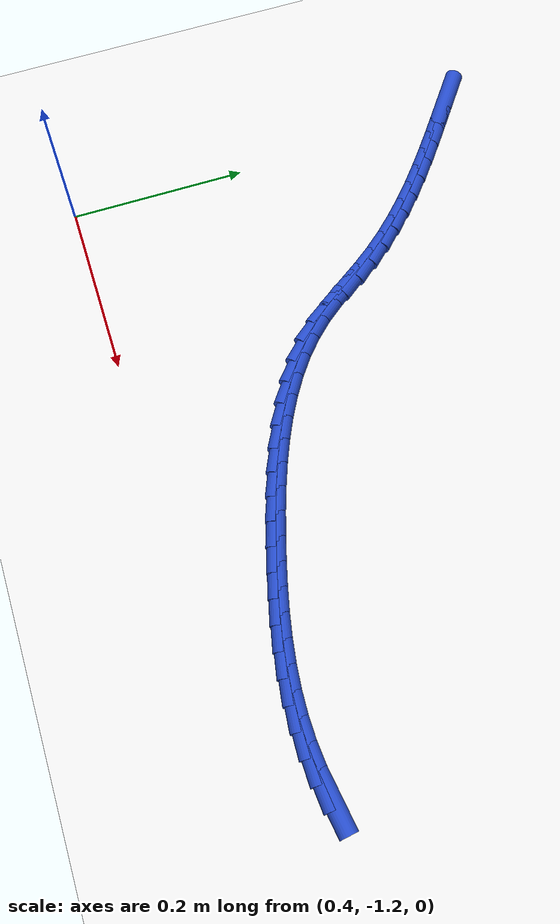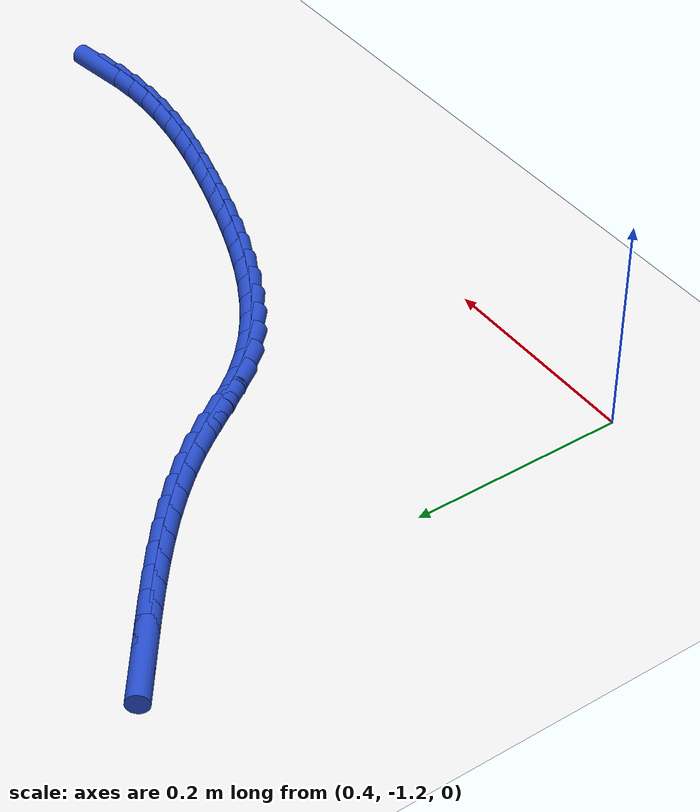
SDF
<sdf version="1.6">
 <world name="default">
  <model name="ground_plane">
   <static>1</static>
   <link name="link">
    <collision name="collision">
     <geometry><plane><normal>0 0 1</normal><size>100 100</size></plane></geometry>
     <surface><friction><ode><mu>100</mu><mu2>50</mu2></ode></friction></surface>
    </collision>
    <visual name="visual">
     <cast_shadows>0</cast_shadows>
     <geometry><plane><normal>0 0 1</normal><size>100 100</size></plane></geometry>
     <material>
      <script><uri>file://media/materials/scripts/gazebo.material</uri><name>Gazebo/WhiteGlow</name></script>
     </material>
    </visual>
   </link>
  </model>
  <model name="line">
   <link name="link_203">
    <pose>1.0924415782746888 -1.1220626288042004 0.01 0 1.57 0.1507272861004259</pose>
    <collision name="collision">
     <geometry><cylinder><radius>0.01</radius><length>0.08</length></cylinder></geometry>
    </collision>
    <visual name="visual">
     <material>
      <script><name>Gazebo/Blue</name><uri>file://media/materials/scripts/gazebo.material</uri></script>
     </material>
     <geometry><cylinder><radius>0.01</radius><length>0.08</length></cylinder></geometry>
    </visual>
   </link>
   <link name="link_204">
    <pose>1.0670404689244142 -1.1259205289366376 0.01 0 1.57 0.07585330802602018</pose>
    <collision name="collision">
     <geometry><cylinder><radius>0.01</radius><length>0.08</length></cylinder></geometry>
    </collision>
    <visual name="visual">
     <material>
      <script><name>Gazebo/Blue</name><uri>file://media/materials/scripts/gazebo.material</uri></script>
     </material>
     <geometry><cylinder><radius>0.01</radius><length>0.08</length></cylinder></geometry>
    </visual>
   </link>
   <link name="link_205">
    <pose>1.0416045703123085 -1.127853634931567 0.01 0 1.57 0.006888719025637134</pose>
    <collision name="collision">
     <geometry><cylinder><radius>0.01</radius><length>0.08</length></cylinder></geometry>
    </collision>
    <visual name="visual">
     <material>
      <script><name>Gazebo/Blue</name><uri>file://media/materials/scripts/gazebo.material</uri></script>
     </material>
     <geometry><cylinder><radius>0.01</radius><length>0.08</length></cylinder></geometry>
    </visual>
   </link>
   <link name="link_206">
    <pose>1.0161416847815394 -1.128029044370232 0.01 0 1.57 -0.05547968630654813</pose>
    <collision name="collision">
     <geometry><cylinder><radius>0.01</radius><length>0.08</length></cylinder></geometry>
    </collision>
    <visual name="visual">
     <material>
      <script><name>Gazebo/Blue</name><uri>file://media/materials/scripts/gazebo.material</uri></script>
     </material>
     <geometry><cylinder><radius>0.01</radius><length>0.08</length></cylinder></geometry>
    </visual>
   </link>
   <link name="link_207">
    <pose>0.9906596146752726 -1.126613854833876 0.01 0 1.57 -0.11089299733934922</pose>
    <collision name="collision">
     <geometry><cylinder><radius>0.01</radius><length>0.08</length></cylinder></geometry>
    </collision>
    <visual name="visual">
     <material>
      <script><name>Gazebo/Blue</name><uri>file://media/materials/scripts/gazebo.material</uri></script>
     </material>
     <geometry><cylinder><radius>0.01</radius><length>0.08</length></cylinder></geometry>
    </visual>
   </link>
   <link name="link_208">
    <pose>0.965166162336676 -1.1237751639037423 0.01 0 1.57 -0.15925060621775528</pose>
    <collision name="collision">
     <geometry><cylinder><radius>0.01</radius><length>0.08</length></cylinder></geometry>
    </collision>
    <visual name="visual">
     <material>
      <script><name>Gazebo/Blue</name><uri>file://media/materials/scripts/gazebo.material</uri></script>
     </material>
     <geometry><cylinder><radius>0.01</radius><length>0.08</length></cylinder></geometry>
    </visual>
   </link>
   <link name="link_209">
    <pose>0.9396691301089142 -1.1196800691610729 0.01 0 1.57 -0.200631131760564</pose>
    <collision name="collision">
     <geometry><cylinder><radius>0.01</radius><length>0.08</length></cylinder></geometry>
    </collision>
    <visual name="visual">
     <material>
      <script><name>Gazebo/Blue</name><uri>file://media/materials/scripts/gazebo.material</uri></script>
     </material>
     <geometry><cylinder><radius>0.01</radius><length>0.08</length></cylinder></geometry>
    </visual>
   </link>
   <link name="link_210">
    <pose>0.9141763203351554 -1.114495668187112 0.01 0 1.57 -0.23521919399553778</pose>
    <collision name="collision">
     <geometry><cylinder><radius>0.01</radius><length>0.08</length></cylinder></geometry>
    </collision>
    <visual name="visual">
     <material>
      <script><name>Gazebo/Blue</name><uri>file://media/materials/scripts/gazebo.material</uri></script>
     </material>
     <geometry><cylinder><radius>0.01</radius><length>0.08</length></cylinder></geometry>
    </visual>
   </link>
   <link name="link_211">
    <pose>0.888695535358564 -1.1083890585631015 0.01 0 1.57 -0.2632454766188378</pose>
    <collision name="collision">
     <geometry><cylinder><radius>0.01</radius><length>0.08</length></cylinder></geometry>
    </collision>
    <visual name="visual">
     <material>
      <script><name>Gazebo/Blue</name><uri>file://media/materials/scripts/gazebo.material</uri></script>
     </material>
     <geometry><cylinder><radius>0.01</radius><length>0.08</length></cylinder></geometry>
    </visual>
   </link>
   <link name="link_212">
    <pose>0.8632345775223089 -1.1015273378702857 0.01 0 1.57 -0.2849915419405591</pose>
    <collision name="collision">
     <geometry><cylinder><radius>0.01</radius><length>0.08</length></cylinder></geometry>
    </collision>
    <visual name="visual">
     <material>
      <script><name>Gazebo/Blue</name><uri>file://media/materials/scripts/gazebo.material</uri></script>
     </material>
     <geometry><cylinder><radius>0.01</radius><length>0.08</length></cylinder></geometry>
    </visual>
   </link>
   <link name="link_213">
    <pose>0.8378018862633255 -1.094076413389217 0.01 0 1.57 -0.30486099980148834</pose>
    <collision name="collision">
     <geometry><cylinder><radius>0.01</radius><length>0.08</length></cylinder></geometry>
    </collision>
    <visual name="visual">
     <material>
      <script><name>Gazebo/Blue</name><uri>file://media/materials/scripts/gazebo.material</uri></script>
     </material>
     <geometry><cylinder><radius>0.01</radius><length>0.08</length></cylinder></geometry>
    </visual>
   </link>
   <link name="link_214">
    <pose>0.8124595635513983 -1.0861019331407369 0.01 0 1.57 -0.33039281222516226</pose>
    <collision name="collision">
     <geometry><cylinder><radius>0.01</radius><length>0.08</length></cylinder></geometry>
    </collision>
    <visual name="visual">
     <material>
      <script><name>Gazebo/Blue</name><uri>file://media/materials/scripts/gazebo.material</uri></script>
     </material>
     <geometry><cylinder><radius>0.01</radius><length>0.08</length></cylinder></geometry>
    </visual>
   </link>
   <link name="link_215">
    <pose>0.7873632403863069 -1.077494802158135 0.01 0 1.57 -0.36265154649700104</pose>
    <collision name="collision">
     <geometry><cylinder><radius>0.01</radius><length>0.08</length></cylinder></geometry>
    </collision>
    <visual name="visual">
     <material>
      <script><name>Gazebo/Blue</name><uri>file://media/materials/scripts/gazebo.material</uri></script>
     </material>
     <geometry><cylinder><radius>0.01</radius><length>0.08</length></cylinder></geometry>
    </visual>
   </link>
   <link name="link_216">
    <pose>0.7626779380186657 -1.0681283813979032 0.01 0 1.57 -0.4020783984325533</pose>
    <collision name="collision">
     <geometry><cylinder><radius>0.01</radius><length>0.08</length></cylinder></geometry>
    </collision>
    <visual name="visual">
     <material>
      <script><name>Gazebo/Blue</name><uri>file://media/materials/scripts/gazebo.material</uri></script>
     </material>
     <geometry><cylinder><radius>0.01</radius><length>0.08</length></cylinder></geometry>
    </visual>
   </link>
   <link name="link_217">
    <pose>0.7385686776990917 -1.0578760318165354 0.01 0 1.57 -0.4491944228552698</pose>
    <collision name="collision">
     <geometry><cylinder><radius>0.01</radius><length>0.08</length></cylinder></geometry>
    </collision>
    <visual name="visual">
     <material>
      <script><name>Gazebo/Blue</name><uri>file://media/materials/scripts/gazebo.material</uri></script>
     </material>
     <geometry><cylinder><radius>0.01</radius><length>0.08</length></cylinder></geometry>
    </visual>
   </link>
   <link name="link_218">
    <pose>0.7152004806781992 -1.0466111143705237 0.01 0 1.57 -0.5045493233614821</pose>
    <collision name="collision">
     <geometry><cylinder><radius>0.01</radius><length>0.08</length></cylinder></geometry>
    </collision>
    <visual name="visual">
     <material>
      <script><name>Gazebo/Blue</name><uri>file://media/materials/scripts/gazebo.material</uri></script>
     </material>
     <geometry><cylinder><radius>0.01</radius><length>0.08</length></cylinder></geometry>
    </visual>
   </link>
   <link name="link_219">
    <pose>0.6927383682066047 -1.0342069900163624 0.01 0 1.57 -0.5686405267400491</pose>
    <collision name="collision">
     <geometry><cylinder><radius>0.01</radius><length>0.08</length></cylinder></geometry>
    </collision>
    <visual name="visual">
     <material>
      <script><name>Gazebo/Blue</name><uri>file://media/materials/scripts/gazebo.material</uri></script>
     </material>
     <geometry><cylinder><radius>0.01</radius><length>0.08</length></cylinder></geometry>
    </visual>
   </link>
   <link name="link_220">
    <pose>0.6713473615349228 -1.0205370197105441 0.01 0 1.57 -0.6417935913406378</pose>
    <collision name="collision">
     <geometry><cylinder><radius>0.01</radius><length>0.08</length></cylinder></geometry>
    </collision>
    <visual name="visual">
     <material>
      <script><name>Gazebo/Blue</name><uri>file://media/materials/scripts/gazebo.material</uri></script>
     </material>
     <geometry><cylinder><radius>0.01</radius><length>0.08</length></cylinder></geometry>
    </visual>
   </link>
   <link name="link_221">
    <pose>0.6511924819137699 -1.005474564409562 0.01 0 1.57 -0.7240028613766811</pose>
    <collision name="collision">
     <geometry><cylinder><radius>0.01</radius><length>0.08</length></cylinder></geometry>
    </collision>
    <visual name="visual">
     <material>
      <script><name>Gazebo/Blue</name><uri>file://media/materials/scripts/gazebo.material</uri></script>
     </material>
     <geometry><cylinder><radius>0.01</radius><length>0.08</length></cylinder></geometry>
    </visual>
   </link>
   <link name="link_222">
    <pose>0.6324387505937606 -0.9888929850699086 0.01 0 1.57 -0.8147497052228434</pose>
    <collision name="collision">
     <geometry><cylinder><radius>0.01</radius><length>0.08</length></cylinder></geometry>
    </collision>
    <visual name="visual">
     <material>
      <script><name>Gazebo/Blue</name><uri>file://media/materials/scripts/gazebo.material</uri></script>
     </material>
     <geometry><cylinder><radius>0.01</radius><length>0.08</length></cylinder></geometry>
    </visual>
   </link>
   <link name="link_223">
    <pose>0.6152511888255114 -0.9706656426480783 0.01 0 1.57 -0.9061825693939963</pose>
    <collision name="collision">
     <geometry><cylinder><radius>0.01</radius><length>0.08</length></cylinder></geometry>
    </collision>
    <visual name="visual">
     <material>
      <script><name>Gazebo/Blue</name><uri>file://media/materials/scripts/gazebo.material</uri></script>
     </material>
     <geometry><cylinder><radius>0.01</radius><length>0.08</length></cylinder></geometry>
    </visual>
   </link>
   <link name="link_224">
    <pose>0.5996729269105191 -0.9507833477240583 0.01 0 1.57 -0.9610478065187098</pose>
    <collision name="collision">
     <geometry><cylinder><radius>0.01</radius><length>0.08</length></cylinder></geometry>
    </collision>
    <visual name="visual">
     <material>
      <script><name>Gazebo/Blue</name><uri>file://media/materials/scripts/gazebo.material</uri></script>
     </material>
     <geometry><cylinder><radius>0.01</radius><length>0.08</length></cylinder></geometry>
    </visual>
   </link>
   <link name="link_225">
    <pose>0.5850744988153406 -0.9298849999022929 0.01 0 1.57 -0.9683563806743408</pose>
    <collision name="collision">
     <geometry><cylinder><radius>0.01</radius><length>0.08</length></cylinder></geometry>
    </collision>
    <visual name="visual">
     <material>
      <script><name>Gazebo/Blue</name><uri>file://media/materials/scripts/gazebo.material</uri></script>
     </material>
     <geometry><cylinder><radius>0.01</radius><length>0.08</length></cylinder></geometry>
    </visual>
   </link>
   <link name="link_226">
    <pose>0.570595707651468 -0.9088318225303109 0.01 0 1.57 -0.9300001304326803</pose>
    <collision name="collision">
     <geometry><cylinder><radius>0.01</radius><length>0.08</length></cylinder></geometry>
    </collision>
    <visual name="visual">
     <material>
      <script><name>Gazebo/Blue</name><uri>file://media/materials/scripts/gazebo.material</uri></script>
     </material>
     <geometry><cylinder><radius>0.01</radius><length>0.08</length></cylinder></geometry>
    </visual>
   </link>
   <link name="link_227">
    <pose>0.5554021207792759 -0.8884591339812783 0.01 0 1.57 -0.872327261947125</pose>
    <collision name="collision">
     <geometry><cylinder><radius>0.01</radius><length>0.08</length></cylinder></geometry>
    </collision>
    <visual name="visual">
     <material>
      <script><name>Gazebo/Blue</name><uri>file://media/materials/scripts/gazebo.material</uri></script>
     </material>
     <geometry><cylinder><radius>0.01</radius><length>0.08</length></cylinder></geometry>
    </visual>
   </link>
   <link name="link_228">
    <pose>0.539152352485571 -0.8691066770751308 0.01 0 1.57 -0.8198916685787779</pose>
    <collision name="collision">
     <geometry><cylinder><radius>0.01</radius><length>0.08</length></cylinder></geometry>
    </collision>
    <visual name="visual">
     <material>
      <script><name>Gazebo/Blue</name><uri>file://media/materials/scripts/gazebo.material</uri></script>
     </material>
     <geometry><cylinder><radius>0.01</radius><length>0.08</length></cylinder></geometry>
    </visual>
   </link>
   <link name="link_229">
    <pose>0.5219462661215839 -0.8506706825896542 0.01 0 1.57 -0.773965098842747</pose>
    <collision name="collision">
     <geometry><cylinder><radius>0.01</radius><length>0.08</length></cylinder></geometry>
    </collision>
    <visual name="visual">
     <material>
      <script><name>Gazebo/Blue</name><uri>file://media/materials/scripts/gazebo.material</uri></script>
     </material>
     <geometry><cylinder><radius>0.01</radius><length>0.08</length></cylinder></geometry>
    </visual>
   </link>
   <link name="link_230">
    <pose>0.5038992963918121 -0.83303173009056 0.01 0 1.57 -0.7347586665554439</pose>
    <collision name="collision">
     <geometry><cylinder><radius>0.01</radius><length>0.08</length></cylinder></geometry>
    </collision>
    <visual name="visual">
     <material>
      <script><name>Gazebo/Blue</name><uri>file://media/materials/scripts/gazebo.material</uri></script>
     </material>
     <geometry><cylinder><radius>0.01</radius><length>0.08</length></cylinder></geometry>
    </visual>
   </link>
   <link name="link_231">
    <pose>0.4851268780007514 -0.816070399143558 0.01 0 1.57 -0.7023354039384269</pose>
    <collision name="collision">
     <geometry><cylinder><radius>0.01</radius><length>0.08</length></cylinder></geometry>
    </collision>
    <visual name="visual">
     <material>
      <script><name>Gazebo/Blue</name><uri>file://media/materials/scripts/gazebo.material</uri></script>
     </material>
     <geometry><cylinder><radius>0.01</radius><length>0.08</length></cylinder></geometry>
    </visual>
   </link>
   <link name="link_232">
    <pose>0.4657444456528997 -0.7996672693143602 0.01 0 1.57 -0.676662617209916</pose>
    <collision name="collision">
     <geometry><cylinder><radius>0.01</radius><length>0.08</length></cylinder></geometry>
    </collision>
    <visual name="visual">
     <material>
      <script><name>Gazebo/Blue</name><uri>file://media/materials/scripts/gazebo.material</uri></script>
     </material>
     <geometry><cylinder><radius>0.01</radius><length>0.08</length></cylinder></geometry>
    </visual>
   </link>
   <link name="link_233">
    <pose>0.4458674340527525 -0.7837029201686759 0.01 0 1.57 -0.6576568756531322</pose>
    <collision name="collision">
     <geometry><cylinder><radius>0.01</radius><length>0.08</length></cylinder></geometry>
    </collision>
    <visual name="visual">
     <material>
      <script><name>Gazebo/Blue</name><uri>file://media/materials/scripts/gazebo.material</uri></script>
     </material>
     <geometry><cylinder><radius>0.01</radius><length>0.08</length></cylinder></geometry>
    </visual>
   </link>
   <link name="link_234">
    <pose>0.42561127790480763 -0.7680579312722169 0.01 0 1.57 -0.64521896732417</pose>
    <collision name="collision">
     <geometry><cylinder><radius>0.01</radius><length>0.08</length></cylinder></geometry>
    </collision>
    <visual name="visual">
     <material>
      <script><name>Gazebo/Blue</name><uri>file://media/materials/scripts/gazebo.material</uri></script>
     </material>
     <geometry><cylinder><radius>0.01</radius><length>0.08</length></cylinder></geometry>
    </visual>
   </link>
   <link name="link_235">
    <pose>0.4050914119135613 -0.7526128821906934 0.01 0 1.57 -0.6392585241269755</pose>
    <collision name="collision">
     <geometry><cylinder><radius>0.01</radius><length>0.08</length></cylinder></geometry>
    </collision>
    <visual name="visual">
     <material>
      <script><name>Gazebo/Blue</name><uri>file://media/materials/scripts/gazebo.material</uri></script>
     </material>
     <geometry><cylinder><radius>0.01</radius><length>0.08</length></cylinder></geometry>
    </visual>
   </link>
   <link name="link_236">
    <pose>0.3844232707835095 -0.7372483524898158 0.01 0 1.57 -0.6397091288414275</pose>
    <collision name="collision">
     <geometry><cylinder><radius>0.01</radius><length>0.08</length></cylinder></geometry>
    </collision>
    <visual name="visual">
     <material>
      <script><name>Gazebo/Blue</name><uri>file://media/materials/scripts/gazebo.material</uri></script>
     </material>
     <geometry><cylinder><radius>0.01</radius><length>0.08</length></cylinder></geometry>
    </visual>
   </link>
  </model>
 </world>
</sdf>
